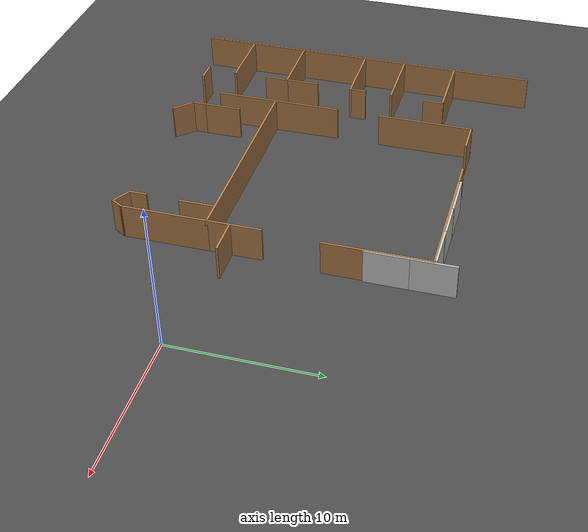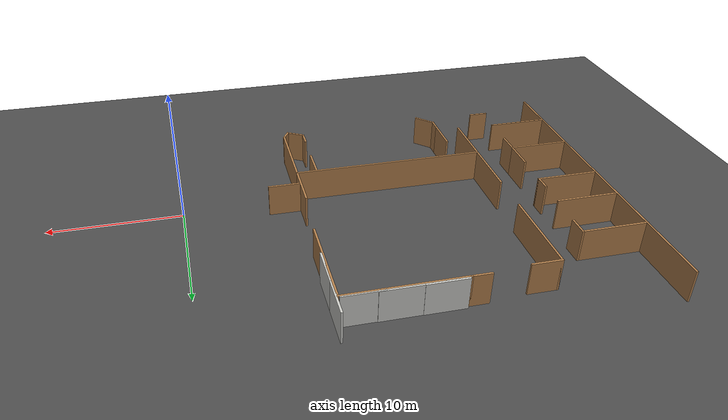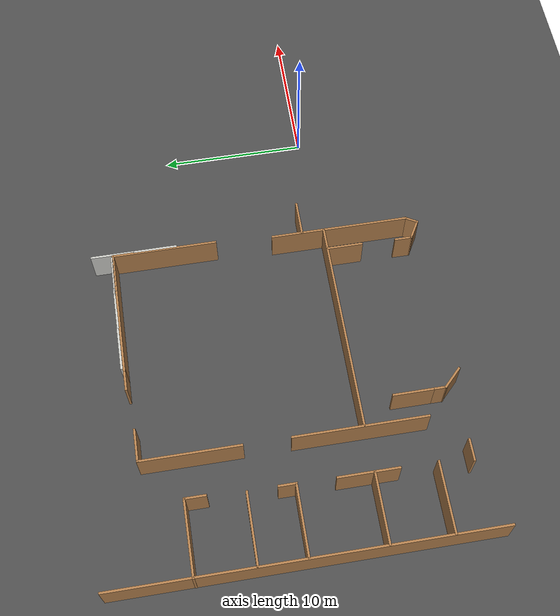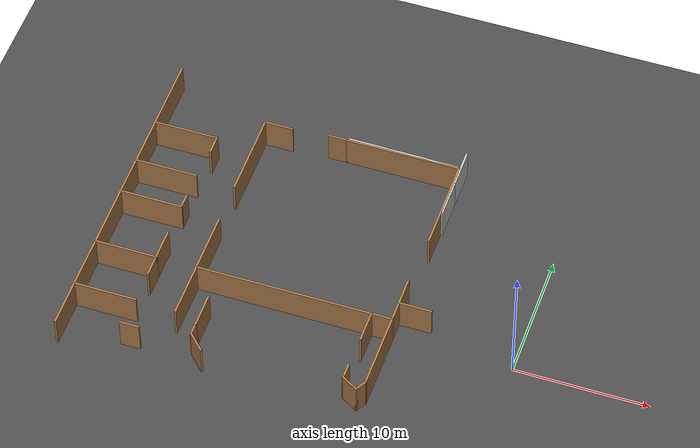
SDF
<sdf version="1.6">
 <world name="default">
  <model name="ground_plane">
   <static>1</static>
   <link name="link">
    <collision name="collision">
     <geometry><plane><normal>0 0 1</normal><size>100 100</size></plane></geometry>
     <surface><friction><ode><mu>100</mu><mu2>50</mu2></ode></friction></surface>
    </collision>
    <visual name="visual">
     <cast_shadows>0</cast_shadows>
     <geometry><plane><normal>0 0 1</normal><size>100 100</size></plane></geometry>
     <material>
      <script><uri>file://media/materials/scripts/gazebo.material</uri><name>Gazebo/Grey</name></script>
     </material>
    </visual>
   </link>
  </model>
  <model name="asphalt_plane">
   <static>1</static>
   <link name="link">
    <collision name="collision"><geometry><box><size>100 100 0.1</size></box></geometry></collision>
    <visual name="visual">
     <cast_shadows>0</cast_shadows>
     <geometry><box><size>100 100 0.1</size></box></geometry>
     <material>
      <script>
       <uri>model://asphalt_plane/materials/scripts</uri>
       <uri>model://asphalt_plane/materials/textures</uri>
       <name>vrc/asphalt</name>
      </script>
     </material>
    </visual>
   </link>
  </model>
  <model name="Hard_wall_wall">
   <pose>-8.48668 14.4739 0 0 -0 0</pose>
   <link name="Wall_0">
    <collision name="Wall_0_Collision">
     <geometry><box><size>3 0.15 2.5</size></box></geometry>
     <pose>0 0 1.25 0 -0 0</pose>
    </collision>
    <visual name="Wall_0_Visual">
     <pose>0 0 1.25 0 -0 0</pose>
     <geometry><box><size>3 0.15 2.5</size></box></geometry>
     <material>
      <script><uri>file://media/materials/scripts/gazebo.material</uri><name>Gazebo/CeilingTiled</name></script>
      <ambient>1 1 1 1</ambient>
     </material>
     <meta><layer>0</layer></meta>
    </visual>
    <pose>0 0 0 0 -0 1.5708</pose>
   </link>
   <static>1</static>
  </model>
  <model name="Hard_wall_wall_0">
   <pose>-8.48804 11.5232 0 0 -0 0</pose>
   <link name="Wall_0">
    <collision name="Wall_0_Collision">
     <geometry><box><size>3 0.15 2.5</size></box></geometry>
     <pose>0 0 1.25 0 -0 0</pose>
    </collision>
    <visual name="Wall_0_Visual">
     <pose>0 0 1.25 0 -0 0</pose>
     <geometry><box><size>3 0.15 2.5</size></box></geometry>
     <material>
      <script><uri>file://media/materials/scripts/gazebo.material</uri><name>Gazebo/CeilingTiled</name></script>
      <ambient>1 1 1 1</ambient>
     </material>
     <meta><layer>0</layer></meta>
    </visual>
    <pose>0 0 0 0 -0 1.5708</pose>
   </link>
   <static>1</static>
  </model>
  <model name="Hard_wall_wall_6_clone_9">
   <pose>-15.5996 14.6023 0 0 -0 1.57079</pose>
   <link name="Wall_0">
    <collision name="Wall_0_Collision">
     <geometry><box><size>3 0.15 2.5</size></box></geometry>
     <pose>0 0 1.25 0 -0 0</pose>
    </collision>
    <visual name="Wall_0_Visual">
     <pose>0 0 1.25 0 -0 0</pose>
     <geometry><box><size>3 0.15 2.5</size></box></geometry>
     <material>
      <script><uri>file://media/materials/scripts/gazebo.material</uri><name>Gazebo/CeilingTiled</name></script>
      <ambient>1 1 1 1</ambient>
     </material>
     <meta><layer>0</layer></meta>
    </visual>
    <pose>0 0 0 0 -0 1.5708</pose>
   </link>
   <static>1</static>
  </model>
  <model name="Hard_wall_wall_6_clone_10">
   <pose>-12.6135 14.583 0 0 -0 1.57079</pose>
   <link name="Wall_0">
    <collision name="Wall_0_Collision">
     <geometry><box><size>3 0.15 2.5</size></box></geometry>
     <pose>0 0 1.25 0 -0 0</pose>
    </collision>
    <visual name="Wall_0_Visual">
     <pose>0 0 1.25 0 -0 0</pose>
     <geometry><box><size>3 0.15 2.5</size></box></geometry>
     <material>
      <script><uri>file://media/materials/scripts/gazebo.material</uri><name>Gazebo/CeilingTiled</name></script>
      <ambient>1 1 1 1</ambient>
     </material>
     <meta><layer>0</layer></meta>
    </visual>
    <pose>0 0 0 0 -0 1.5708</pose>
   </link>
   <static>1</static>
  </model>
  <model name="Hard_wall_wall_6_clone_11">
   <pose>-10.1743 14.5482 0 0 -0 1.57079</pose>
   <link name="Wall_0">
    <collision name="Wall_0_Collision">
     <geometry><box><size>3 0.15 2.5</size></box></geometry>
     <pose>0 0 1.25 0 -0 0</pose>
    </collision>
    <visual name="Wall_0_Visual">
     <pose>0 0 1.25 0 -0 0</pose>
     <geometry><box><size>3 0.15 2.5</size></box></geometry>
     <material>
      <script><uri>file://media/materials/scripts/gazebo.material</uri><name>Gazebo/CeilingTiled</name></script>
      <ambient>1 1 1 1</ambient>
     </material>
     <meta><layer>0</layer></meta>
    </visual>
    <pose>0 0 0 0 -0 1.5708</pose>
   </link>
   <static>1</static>
  </model>
  <model name="Soft_wall_v1_1">
   <pose>-14.3408 -3.86286 0 0 -0 0</pose>
   <link name="Wall_10">
    <collision name="Wall_10_Collision">
     <geometry><box><size>25.25 0.15 2.5</size></box></geometry>
     <pose>0 0 1.25 0 -0 0</pose>
    </collision>
    <visual name="Wall_10_Visual">
     <pose>0 0 1.25 0 -0 0</pose>
     <geometry><box><size>25.25 0.15 2.5</size></box></geometry>
     <material>
      <script><uri>file://media/materials/scripts/gazebo.material</uri><name>Gazebo/Wood</name></script>
      <ambient>1 1 1 1</ambient>
     </material>
     <meta><layer>0</layer></meta>
    </visual>
    <pose>-16.8068 8.447 0 0 -0 1.5708</pose>
   </link>
   <link name="Wall_132">
    <collision name="Wall_132_Collision">
     <geometry><box><size>8.75 0.15 2.5</size></box></geometry>
     <pose>0 0 1.25 0 -0 0</pose>
    </collision>
    <visual name="Wall_132_Visual">
     <pose>0 0 1.25 0 -0 0</pose>
     <geometry><box><size>8.75 0.15 2.5</size></box></geometry>
     <material>
      <script><uri>file://media/materials/scripts/gazebo.material</uri><name>Gazebo/Wood</name></script>
      <ambient>1 1 1 1</ambient>
     </material>
     <meta><layer>0</layer></meta>
    </visual>
    <pose>1.44321 18.3124 0 0 -0 0</pose>
   </link>
   <link name="Wall_138">
    <collision name="Wall_138_Collision">
     <geometry><box><size>5 0.15 2.5</size></box></geometry>
     <pose>0 0 1.25 0 -0 0</pose>
    </collision>
    <visual name="Wall_138_Visual">
     <pose>0 0 1.25 0 -0 0</pose>
     <geometry><box><size>5 0.15 2.5</size></box></geometry>
     <material>
      <script><uri>file://media/materials/scripts/gazebo.material</uri><name>Gazebo/Wood</name></script>
      <ambient>1 1 1 1</ambient>
     </material>
     <meta><layer>0</layer></meta>
    </visual>
    <pose>-14.4007 15.4626 0 0 -0 0</pose>
   </link>
   <link name="Wall_139">
    <collision name="Wall_139_Collision">
     <geometry><box><size>1.5 0.15 2.5</size></box></geometry>
     <pose>0 0 1.25 0 -0 0</pose>
    </collision>
    <visual name="Wall_139_Visual">
     <pose>0 0 1.25 0 -0 0</pose>
     <geometry><box><size>1.5 0.15 2.5</size></box></geometry>
     <material>
      <script><uri>file://media/materials/scripts/gazebo.material</uri><name>Gazebo/Wood</name></script>
      <ambient>1 1 1 1</ambient>
     </material>
     <meta><layer>0</layer></meta>
    </visual>
    <pose>-11.9757 14.7876 0 0 0 -1.5708</pose>
   </link>
   <link name="Wall_143">
    <collision name="Wall_143_Collision">
     <geometry><box><size>4.75 0.15 2.5</size></box></geometry>
     <pose>0 0 1.25 0 -0 0</pose>
    </collision>
    <visual name="Wall_143_Visual">
     <pose>0 0 1.25 0 -0 0</pose>
     <geometry><box><size>4.75 0.15 2.5</size></box></geometry>
     <material>
      <script><uri>file://media/materials/scripts/gazebo.material</uri><name>Gazebo/Wood</name></script>
      <ambient>1 1 1 1</ambient>
     </material>
     <meta><layer>0</layer></meta>
    </visual>
    <pose>-14.4641 11.5863 0 0 -0 0</pose>
   </link>
   <link name="Wall_149">
    <collision name="Wall_149_Collision">
     <geometry><box><size>1.25 0.15 2.5</size></box></geometry>
     <pose>0 0 1.25 0 -0 0</pose>
    </collision>
    <visual name="Wall_149_Visual">
     <pose>0 0 1.25 0 -0 0</pose>
     <geometry><box><size>1.25 0.15 2.5</size></box></geometry>
     <material>
      <script><uri>file://media/materials/scripts/gazebo.material</uri><name>Gazebo/Wood</name></script>
      <ambient>1 1 1 1</ambient>
     </material>
     <meta><layer>0</layer></meta>
    </visual>
    <pose>-12.1304 9.03417 0 0 0 -1.5708</pose>
   </link>
   <link name="Wall_150">
    <collision name="Wall_150_Collision">
     <geometry><box><size>4.75 0.15 2.5</size></box></geometry>
     <pose>0 0 1.25 0 -0 0</pose>
    </collision>
    <visual name="Wall_150_Visual">
     <pose>0 0 1.25 0 -0 0</pose>
     <geometry><box><size>4.75 0.15 2.5</size></box></geometry>
     <material>
      <script><uri>file://media/materials/scripts/gazebo.material</uri><name>Gazebo/Wood</name></script>
      <ambient>1 1 1 1</ambient>
     </material>
     <meta><layer>0</layer></meta>
    </visual>
    <pose>-14.4304 8.48417 0 0 -0 3.14159</pose>
   </link>
   <link name="Wall_152">
    <collision name="Wall_152_Collision">
     <geometry><box><size>2.5 0.15 2.5</size></box></geometry>
     <pose>0 0 1.25 0 -0 0</pose>
    </collision>
    <visual name="Wall_152_Visual">
     <pose>0 0 1.25 0 -0 0</pose>
     <geometry><box><size>2.5 0.15 2.5</size></box></geometry>
     <material>
      <script><uri>file://media/materials/scripts/gazebo.material</uri><name>Gazebo/Wood</name></script>
      <ambient>1 1 1 1</ambient>
     </material>
     <meta><layer>0</layer></meta>
    </visual>
    <pose>-12.1839 4.7175 0 0 0 -1.5708</pose>
   </link>
   <link name="Wall_153">
    <collision name="Wall_153_Collision">
     <geometry><box><size>4.75 0.15 2.5</size></box></geometry>
     <pose>0 0 1.25 0 -0 0</pose>
    </collision>
    <visual name="Wall_153_Visual">
     <pose>0 0 1.25 0 -0 0</pose>
     <geometry><box><size>4.75 0.15 2.5</size></box></geometry>
     <material>
      <script><uri>file://media/materials/scripts/gazebo.material</uri><name>Gazebo/Wood</name></script>
      <ambient>1 1 1 1</ambient>
     </material>
     <meta><layer>0</layer></meta>
    </visual>
    <pose>-14.4839 3.5425 0 0 -0 3.14159</pose>
   </link>
   <link name="Wall_155">
    <collision name="Wall_155_Collision">
     <geometry><box><size>1.75 0.15 2.5</size></box></geometry>
     <pose>0 0 1.25 0 -0 0</pose>
    </collision>
    <visual name="Wall_155_Visual">
     <pose>0 0 1.25 0 -0 0</pose>
     <geometry><box><size>1.75 0.15 2.5</size></box></geometry>
     <material>
      <script><uri>file://media/materials/scripts/gazebo.material</uri><name>Gazebo/Wood</name></script>
      <ambient>1 1 1 1</ambient>
     </material>
     <meta><layer>0</layer></meta>
    </visual>
    <pose>-12.1839 2.7425 0 0 0 -1.5708</pose>
   </link>
   <link name="Wall_157">
    <collision name="Wall_157_Collision">
     <geometry><box><size>4.75 0.15 2.5</size></box></geometry>
     <pose>0 0 1.25 0 -0 0</pose>
    </collision>
    <visual name="Wall_157_Visual">
     <pose>0 0 1.25 0 -0 0</pose>
     <geometry><box><size>4.75 0.15 2.5</size></box></geometry>
     <material>
      <script><uri>file://media/materials/scripts/gazebo.material</uri><name>Gazebo/Wood</name></script>
      <ambient>1 1 1 1</ambient>
     </material>
     <meta><layer>0</layer></meta>
    </visual>
    <pose>-14.4851 -0.527798 0 0 -0 0</pose>
   </link>
   <link name="Wall_161">
    <collision name="Wall_161_Collision">
     <geometry><box><size>1.5 0.15 2.5</size></box></geometry>
     <pose>0 0 1.25 0 -0 0</pose>
    </collision>
    <visual name="Wall_161_Visual">
     <pose>0 0 1.25 0 -0 0</pose>
     <geometry><box><size>1.5 0.15 2.5</size></box></geometry>
     <material>
      <script><uri>file://media/materials/scripts/gazebo.material</uri><name>Gazebo/Wood</name></script>
      <ambient>1 1 1 1</ambient>
     </material>
     <meta><layer>0</layer></meta>
    </visual>
    <pose>-11.7818 -2.753 0 0 -0 0</pose>
   </link>
   <link name="Wall_200">
    <collision name="Wall_200_Collision">
     <geometry><box><size>7.25 0.15 2.5</size></box></geometry>
     <pose>0 0 1.25 0 -0 0</pose>
    </collision>
    <visual name="Wall_200_Visual">
     <pose>0 0 1.25 0 -0 0</pose>
     <geometry><box><size>7.25 0.15 2.5</size></box></geometry>
     <material>
      <script><uri>file://media/materials/scripts/gazebo.material</uri><name>Gazebo/Wood</name></script>
      <ambient>1 1 1 1</ambient>
     </material>
     <meta><layer>0</layer></meta>
    </visual>
    <pose>5.74321 14.7624 0 0 0 -1.5708</pose>
   </link>
   <link name="Wall_274">
    <collision name="Wall_274_Collision">
     <geometry><box><size>9 0.15 2.5</size></box></geometry>
     <pose>0 0 1.25 0 -0 0</pose>
    </collision>
    <visual name="Wall_274_Visual">
     <pose>0 0 1.25 0 -0 0</pose>
     <geometry><box><size>9 0.15 2.5</size></box></geometry>
     <material>
      <script><uri>file://media/materials/scripts/gazebo.material</uri><name>Gazebo/Wood</name></script>
      <ambient>1 1 1 1</ambient>
     </material>
     <meta><layer>0</layer></meta>
    </visual>
    <pose>-9.14299 3.81431 0 0 -0 1.5708</pose>
   </link>
   <link name="Wall_276">
    <collision name="Wall_276_Collision">
     <geometry><box><size>6.75 0.15 2.5</size></box></geometry>
     <pose>0 0 1.25 0 -0 0</pose>
    </collision>
    <visual name="Wall_276_Visual">
     <pose>0 0 1.25 0 -0 0</pose>
     <geometry><box><size>6.75 0.15 2.5</size></box></geometry>
     <material>
      <script><uri>file://media/materials/scripts/gazebo.material</uri><name>Gazebo/Wood</name></script>
      <ambient>1 1 1 1</ambient>
     </material>
     <meta><layer>0</layer></meta>
    </visual>
    <pose>-9.14299 14.7488 0 0 -0 1.5708</pose>
   </link>
   <link name="Wall_278">
    <collision name="Wall_278_Collision">
     <geometry><box><size>2.25 0.15 2.5</size></box></geometry>
     <pose>0 0 1.25 0 -0 0</pose>
    </collision>
    <visual name="Wall_278_Visual">
     <pose>0 0 1.25 0 -0 0</pose>
     <geometry><box><size>2.25 0.15 2.5</size></box></geometry>
     <material>
      <script><uri>file://media/materials/scripts/gazebo.material</uri><name>Gazebo/Wood</name></script>
      <ambient>1 1 1 1</ambient>
     </material>
     <meta><layer>0</layer></meta>
    </visual>
    <pose>-8.093 18.0488 0 0 -0 0</pose>
   </link>
   <link name="Wall_280">
    <collision name="Wall_280_Collision">
     <geometry><box><size>1.5 0.15 2.5</size></box></geometry>
     <pose>0 0 1.25 0 -0 0</pose>
    </collision>
    <visual name="Wall_280_Visual">
     <pose>0 0 1.25 0 -0 0</pose>
     <geometry><box><size>1.5 0.15 2.5</size></box></geometry>
     <material>
      <script><uri>file://media/materials/scripts/gazebo.material</uri><name>Gazebo/Wood</name></script>
      <ambient>1 1 1 1</ambient>
     </material>
     <meta><layer>0</layer></meta>
    </visual>
    <pose>-3.53179 18.3124 0 0 -0 3.14159</pose>
   </link>
   <link name="Wall_282">
    <collision name="Wall_282_Collision">
     <geometry><box><size>14.75 0.15 2.5</size></box></geometry>
     <pose>0 0 1.25 0 -0 0</pose>
    </collision>
    <visual name="Wall_282_Visual">
     <pose>0 0 1.25 0 -0 0</pose>
     <geometry><box><size>14.75 0.15 2.5</size></box></geometry>
     <material>
      <script><uri>file://media/materials/scripts/gazebo.material</uri><name>Gazebo/Wood</name></script>
      <ambient>1 1 1 1</ambient>
     </material>
     <meta><layer>0</layer></meta>
    </visual>
    <pose>-1.79541 3.60179 0 0 -0 0</pose>
   </link>
   <link name="Wall_283">
    <collision name="Wall_283_Collision">
     <geometry><box><size>6 0.15 2.5</size></box></geometry>
     <pose>0 0 1.25 0 -0 0</pose>
    </collision>
    <visual name="Wall_283_Visual">
     <pose>0 0 1.25 0 -0 0</pose>
     <geometry><box><size>6 0.15 2.5</size></box></geometry>
     <material>
      <script><uri>file://media/materials/scripts/gazebo.material</uri><name>Gazebo/Wood</name></script>
      <ambient>1 1 1 1</ambient>
     </material>
     <meta><layer>0</layer></meta>
    </visual>
    <pose>5.50459 0.67679 0 0 0 -1.5708</pose>
   </link>
   <link name="Wall_284">
    <collision name="Wall_284_Collision">
     <geometry><box><size>1 0.15 2.5</size></box></geometry>
     <pose>0 0 1.25 0 -0 0</pose>
    </collision>
    <visual name="Wall_284_Visual">
     <pose>0 0 1.25 0 -0 0</pose>
     <geometry><box><size>1 0.15 2.5</size></box></geometry>
     <material>
      <script><uri>file://media/materials/scripts/gazebo.material</uri><name>Gazebo/Wood</name></script>
      <ambient>1 1 1 1</ambient>
     </material>
     <meta><layer>0</layer></meta>
    </visual>
    <pose>5.29209 -2.61627 0 0 0 -2.0944</pose>
   </link>
   <link name="Wall_285">
    <collision name="Wall_285_Collision">
     <geometry><box><size>1.5 0.15 2.5</size></box></geometry>
     <pose>0 0 1.25 0 -0 0</pose>
    </collision>
    <visual name="Wall_285_Visual">
     <pose>0 0 1.25 0 -0 0</pose>
     <geometry><box><size>1.5 0.15 2.5</size></box></geometry>
     <material>
      <script><uri>file://media/materials/scripts/gazebo.material</uri><name>Gazebo/Wood</name></script>
      <ambient>1 1 1 1</ambient>
     </material>
     <meta><layer>0</layer></meta>
    </visual>
    <pose>4.49502 -2.64683 0 0 -0 2.61799</pose>
   </link>
   <link name="Wall_286">
    <collision name="Wall_286_Collision">
     <geometry><box><size>1.25 0.15 2.5</size></box></geometry>
     <pose>0 0 1.25 0 -0 0</pose>
    </collision>
    <visual name="Wall_286_Visual">
     <pose>0 0 1.25 0 -0 0</pose>
     <geometry><box><size>1.25 0.15 2.5</size></box></geometry>
     <material>
      <script><uri>file://media/materials/scripts/gazebo.material</uri><name>Gazebo/Wood</name></script>
      <ambient>1 1 1 1</ambient>
     </material>
     <meta><layer>0</layer></meta>
    </visual>
    <pose>3.91046 -1.75933 0 0 -0 1.5708</pose>
   </link>
   <link name="Wall_288">
    <collision name="Wall_288_Collision">
     <geometry><box><size>2.5 0.15 2.5</size></box></geometry>
     <pose>0 0 1.25 0 -0 0</pose>
    </collision>
    <visual name="Wall_288_Visual">
     <pose>0 0 1.25 0 -0 0</pose>
     <geometry><box><size>2.5 0.15 2.5</size></box></geometry>
     <material>
      <script><uri>file://media/materials/scripts/gazebo.material</uri><name>Gazebo/Wood</name></script>
      <ambient>1 1 1 1</ambient>
     </material>
     <meta><layer>0</layer></meta>
    </visual>
    <pose>3.97174 2.38633 0 0 0 -1.5708</pose>
   </link>
   <link name="Wall_297">
    <collision name="Wall_297_Collision">
     <geometry><box><size>2.75 0.15 2.5</size></box></geometry>
     <pose>0 0 1.25 0 -0 0</pose>
    </collision>
    <visual name="Wall_297_Visual">
     <pose>0 0 1.25 0 -0 0</pose>
     <geometry><box><size>2.75 0.15 2.5</size></box></geometry>
     <material>
      <script><uri>file://media/materials/scripts/gazebo.material</uri><name>Gazebo/Wood</name></script>
      <ambient>1 1 1 1</ambient>
     </material>
     <meta><layer>0</layer></meta>
    </visual>
    <pose>-7.39628 0.036278 0 0 0 -1.5708</pose>
   </link>
   <link name="Wall_298">
    <collision name="Wall_298_Collision">
     <geometry><box><size>1 0.15 2.5</size></box></geometry>
     <pose>0 0 1.25 0 -0 0</pose>
    </collision>
    <visual name="Wall_298_Visual">
     <pose>0 0 1.25 0 -0 0</pose>
     <geometry><box><size>1 0.15 2.5</size></box></geometry>
     <material>
      <script><uri>file://media/materials/scripts/gazebo.material</uri><name>Gazebo/Wood</name></script>
      <ambient>1 1 1 1</ambient>
     </material>
     <meta><layer>0</layer></meta>
    </visual>
    <pose>-7.39628 -1.68872 0 0 0 -1.5708</pose>
   </link>
   <link name="Wall_299">
    <collision name="Wall_299_Collision">
     <geometry><box><size>1.75 0.15 2.5</size></box></geometry>
     <pose>0 0 1.25 0 -0 0</pose>
    </collision>
    <visual name="Wall_299_Visual">
     <pose>0 0 1.25 0 -0 0</pose>
     <geometry><box><size>1.75 0.15 2.5</size></box></geometry>
     <material>
      <script><uri>file://media/materials/scripts/gazebo.material</uri><name>Gazebo/Wood</name></script>
      <ambient>1 1 1 1</ambient>
     </material>
     <meta><layer>0</layer></meta>
    </visual>
    <pose>-6.83059 -2.67941 0 0 0 -0.785398</pose>
   </link>
   <link name="Wall_306">
    <collision name="Wall_306_Collision">
     <geometry><box><size>3.75 0.15 2.5</size></box></geometry>
     <pose>0 0 1.25 0 -0 0</pose>
    </collision>
    <visual name="Wall_306_Visual">
     <pose>0 0 1.25 0 -0 0</pose>
     <geometry><box><size>3.75 0.15 2.5</size></box></geometry>
     <material>
      <script><uri>file://media/materials/scripts/gazebo.material</uri><name>Gazebo/Wood</name></script>
      <ambient>1 1 1 1</ambient>
     </material>
     <meta><layer>0</layer></meta>
    </visual>
    <pose>5.50459 5.40179 0 0 -0 1.5708</pose>
   </link>
   <link name="Wall_326">
    <collision name="Wall_326_Collision">
     <geometry><box><size>2.5 0.15 2.5</size></box></geometry>
     <pose>0 0 1.25 0 -0 0</pose>
    </collision>
    <visual name="Wall_326_Visual">
     <pose>0 0 1.25 0 -0 0</pose>
     <geometry><box><size>2.5 0.15 2.5</size></box></geometry>
     <material>
      <script><uri>file://media/materials/scripts/gazebo.material</uri><name>Gazebo/Wood</name></script>
      <ambient>1 1 1 1</ambient>
     </material>
     <meta><layer>0</layer></meta>
    </visual>
    <pose>6.71011 5.1345 0 0 -0 0</pose>
   </link>
   <static>1</static>
  </model>
 </world>
</sdf>
